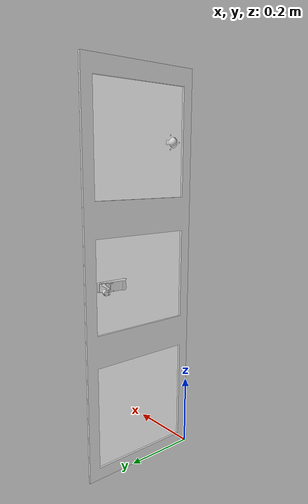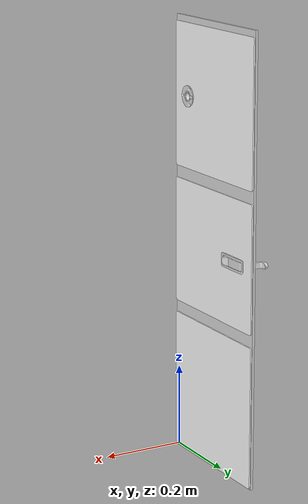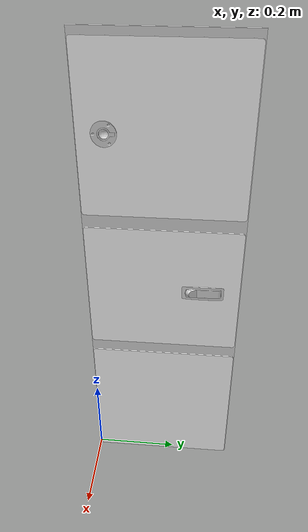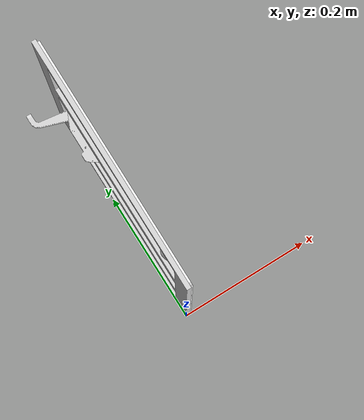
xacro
<?xml version="1.0"?>
<robot xmlns:xacro="http://wiki.ros.org/xacro" name="trainer_front_right_face">
  <xacro:arg name="prefix" default=""/>

  <xacro:include filename="$(find trainer)/urdf/colors.xacro"/>

  <link name="world"/>

  <xacro:include filename="$(find trainer)/urdf/trainer_front_right_face.xacro"/>
  <xacro:trainer_front_right_face prefix="$(arg prefix)" parent="world">
    <origin xyz="0.0 0.0 0.0" rpy="0 0 0"/>
  </xacro:trainer_front_right_face>

</robot>

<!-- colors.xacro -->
<robot xmlns:xacro="http://wiki.ros.org/xacro" name="trainer_side">

  <material name="red">
    <color rgba="1.0 0 0 1"/>
  </material>

  <material name="green">
    <color rgba="0 1.0 0 1"/>
  </material>

  <material name="blue">
    <color rgba="0 0 1.0 1"/>
  </material>

  <material name="gray">
    <color rgba="0.85 0.85 0.85 1.0"/>
  </material>

  <material name="white">
    <color rgba="1.0 1.0 1.0 1.0"/>
  </material>

</robot>

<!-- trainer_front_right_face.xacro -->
<robot xmlns:xacro="http://wiki.ros.org/xacro">

  <xacro:macro name="trainer_front_right_face" params="
    prefix:=''
    parent:=''
    *origin">

  <joint name="${prefix}trainer_front_right_face_joint" type="fixed">
    <parent link="${parent}"/>
    <child link="${prefix}front_right_face"/>
    <xacro:insert_block name="origin"/>
  </joint>

  <link name="${prefix}front_right_face">
    <!--TODO set proper inertia-->
    <inertial>
      <origin rpy="0 0 0" xyz="0.0 0.0 0.0"/>
      <mass value="0.1"/>
      <inertia ixx="0.1" ixy="0.0" ixz="0.0" iyy="0.1" iyz="0.0" izz="0.1"/>
    </inertial>
    <visual>
      <origin xyz="0.0 0.0 0.0" rpy="0 0 0"/>
      <geometry>
        <mesh filename="package://trainer/meshes/visual/front_right_face.stl"/>
      </geometry>
      <material name="gray"/>
    </visual>
    <collision>
      <origin xyz="0.0 0.0 0.0" rpy="0 0 0"/>
      <geometry>
        <mesh filename="package://trainer/meshes/collision/front_right_face.stl"/>
      </geometry>
      <material name="red"/>
    </collision>
  </link>

  <joint name="${prefix}cabinet_1_joint" type="revolute">
    <axis xyz="0 0 1"/>
    <limit effort="10.0" lower="0.0" upper="3.14" velocity="0.5"/>
    <parent link="${prefix}front_right_face"/>
    <child link="${prefix}cabinet_1"/>
    <origin xyz="0.017 ${0.344 + 0.0018} 0.713" rpy="0 0 0"/>
    <dynamics friction="3.0" damping="3.0"/>
  </joint>

  <link name="${prefix}cabinet_1">
    <!--TODO set proper inertia-->
    <inertial>
      <origin rpy="0 0 0" xyz="0.0 0.0 0.0"/>
      <mass value="0.1"/>
      <inertia ixx="0.1" ixy="0.0" ixz="0.0" iyy="0.1" iyz="0.0" izz="0.1"/>
    </inertial>
    <visual>
      <origin xyz="${-0.0075 - 0.003175} -0.00366 0.0" rpy="0 0 0"/>
      <geometry>
        <mesh filename="package://trainer/meshes/visual/cabinet_door_1.stl"/>
      </geometry>
      <material name="white"/>
    </visual>
    <collision>
      <origin xyz="${-0.0075 - 0.003175} -0.00366 0.0" rpy="0 0 0"/>
      <geometry>
        <mesh filename="package://trainer/meshes/collision/cabinet_door_1.stl"/>
      </geometry>
      <material name="red"/>
    </collision>
  </link>

  <joint name="${prefix}round_latch_housing_joint" type="fixed">
    <parent link="${prefix}cabinet_1"/>
    <child link="${prefix}round_latch_housing"/>
    <origin xyz="-0.00547 -0.28855 0.16622" rpy="${pi} 0 0"/>
  </joint>

  <link name="${prefix}round_latch_housing">
    <!--TODO set proper inertia-->
    <inertial>
      <origin rpy="0 0 0" xyz="0.0 0.0 0.0"/>
      <mass value="0.1"/>
      <inertia ixx="0.1" ixy="0.0" ixz="0.0" iyy="0.1" iyz="0.0" izz="0.1"/>
    </inertial>
    <visual>
      <origin xyz="0.0 0.0 0.0" rpy="0 0 0"/>
      <geometry>
        <mesh filename="package://trainer/meshes/visual/round_latch_housing.stl"/>
      </geometry>
      <material name="gray"/>
    </visual>
    <collision>
      <origin xyz="0.0 0.0 0.0" rpy="0 0 0"/>
      <geometry>
        <mesh filename="package://trainer/meshes/collision/round_latch_housing.stl"/>
      </geometry>
      <material name="red"/>
    </collision>
  </link>

  <joint name="${prefix}round_latch_joint" type="revolute">
    <axis xyz="0 0 -1"/>
    <limit effort="10.0" lower="0.0" upper="3.14" velocity="0.5"/>
    <parent link="${prefix}round_latch_housing"/>
    <child link="${prefix}round_latch_handle"/>
    <origin xyz="0.0 -0.0212 -0.0035" rpy="0 0 0"/>
    <dynamics friction="3.0" damping="3.0"/>
  </joint>

  <link name="${prefix}round_latch_handle">
    <!--TODO set proper inertia-->
    <inertial>
      <origin rpy="0 0 0" xyz="0.0 0.0 0.0"/>
      <mass value="0.1"/>
      <inertia ixx="0.1" ixy="0.0" ixz="0.0" iyy="0.1" iyz="0.0" izz="0.1"/>
    </inertial>
    <visual>
      <origin xyz="0.0 0.0 0.0" rpy="0 0 0"/>
      <geometry>
        <mesh filename="package://trainer/meshes/visual/round_latch_handle.stl"/>
      </geometry>
      <material name="gray"/>
    </visual>
    <collision>
      <origin xyz="0.0 0.0 0.0" rpy="0 0 0"/>
      <geometry>
        <mesh filename="package://trainer/meshes/collision/round_latch_handle.stl"/>
      </geometry>
      <material name="red"/>
    </collision>
  </link>

  <joint name="${prefix}cabinet_2_joint" type="revolute">
    <axis xyz="0 0 -1"/>
    <limit effort="10.0" lower="0.0" upper="3.14" velocity="0.5"/>
    <parent link="${prefix}front_right_face"/>
    <child link="${prefix}cabinet_2"/>
    <origin xyz="0.017 -0.0018 0.379" rpy="0 0 0"/>
    <dynamics friction="3.0" damping="3.0"/>
  </joint>

  <link name="${prefix}cabinet_2">
    <!--TODO set proper inertia-->
    <inertial>
      <origin rpy="0 0 0" xyz="0.0 0.0 0.0"/>
      <mass value="0.1"/>
      <inertia ixx="0.1" ixy="0.0" ixz="0.0" iyy="0.1" iyz="0.0" izz="0.1"/>
    </inertial>
    <visual>
      <origin xyz="${-0.0075 - 0.003175} 0.00366 0.0" rpy="0 0 0"/>
      <geometry>
        <mesh filename="package://trainer/meshes/visual/cabinet_door_2.stl"/>
      </geometry>
      <material name="white"/>
    </visual>
    <collision>
      <origin xyz="${-0.0075 - 0.003175} 0.00366 0.0" rpy="0 0 0"/>
      <geometry>
        <mesh filename="package://trainer/meshes/collision/cabinet_door_2.stl"/>
      </geometry>
      <material name="red"/>
    </collision>
  </link>

  <joint name="${prefix}push_latch_housing_joint" type="fixed">
    <parent link="${prefix}cabinet_2"/>
    <child link="${prefix}push_latch_housing"/>
    <origin xyz="-0.0075 0.2185 0.134" rpy="0 0 0"/>
  </joint>

  <link name="${prefix}push_latch_housing">
    <!--TODO set proper inertia-->
    <inertial>
      <origin rpy="0 0 0" xyz="0.0 0.0 0.0"/>
      <mass value="0.1"/>
      <inertia ixx="0.1" ixy="0.0" ixz="0.0" iyy="0.1" iyz="0.0" izz="0.1"/>
    </inertial>
    <visual>
      <origin xyz="0.0 0.0 0.0" rpy="0 0 0"/>
      <geometry>
        <mesh filename="package://trainer/meshes/visual/push_latch_housing.stl"/>
      </geometry>
      <material name="gray"/>
    </visual>
    <collision>
      <origin xyz="0.0 0.0 0.0" rpy="0 0 0"/>
      <geometry>
        <mesh filename="package://trainer/meshes/collision/push_latch_housing.stl"/>
      </geometry>
      <material name="red"/>
    </collision>
  </link>

  <joint name="${prefix}push_latch_button_joint" type="prismatic">
    <axis xyz="-1 0 0"/>
    <!--TODO button travel is a complete guess at this point-->
    <limit effort="10.0" lower="0.0" upper="0.005" velocity="0.5"/>
    <parent link="${prefix}push_latch_housing"/>
    <child link="${prefix}push_latch_button"/>
    <origin xyz="-0.0125 0.0285 0.0045" rpy="0 0 ${pi/8}"/>
    <dynamics friction="3.0" damping="3.0"/>
  </joint>

  <link name="${prefix}push_latch_button">
    <!--TODO set proper inertia-->
    <inertial>
      <origin rpy="0 0 0" xyz="0.0 0.0 0.0"/>
      <mass value="0.1"/>
      <inertia ixx="0.1" ixy="0.0" ixz="0.0" iyy="0.1" iyz="0.0" izz="0.1"/>
    </inertial>
    <visual>
      <origin xyz="0.0 0.0 0.0" rpy="0 0 0"/>
      <geometry>
        <mesh filename="package://trainer/meshes/visual/push_latch_button.stl"/>
      </geometry>
      <material name="gray"/>
    </visual>
    <collision>
      <origin xyz="0.0 0.0 0.0" rpy="0 0 0"/>
      <geometry>
        <mesh filename="package://trainer/meshes/collision/push_latch_button.stl"/>
      </geometry>
      <material name="red"/>
    </collision>
  </link>

  <joint name="${prefix}push_latch_handle_joint" type="revolute">
    <axis xyz="0 0 1"/>
    <limit effort="10.0" lower="0.0" upper="${pi/3}" velocity="0.5"/>
    <parent link="${prefix}push_latch_housing"/>
    <child link="${prefix}push_latch_handle"/>
    <origin xyz="-0.003 0.079 0.0045" rpy="0 0 0"/>
    <dynamics friction="3.0" damping="3.0"/>
  </joint>

  <link name="${prefix}push_latch_handle">
    <!--TODO set proper inertia-->
    <inertial>
      <origin rpy="0 0 0" xyz="0.0 0.0 0.0"/>
      <mass value="0.1"/>
      <inertia ixx="0.1" ixy="0.0" ixz="0.0" iyy="0.1" iyz="0.0" izz="0.1"/>
    </inertial>
    <visual>
      <origin xyz="0.0 0.0 0.0" rpy="0 0 0"/>
      <geometry>
        <mesh filename="package://trainer/meshes/visual/push_latch_handle.stl"/>
      </geometry>
      <material name="gray"/>
    </visual>
    <collision>
      <origin xyz="0.0 0.0 0.0" rpy="0 0 0"/>
      <geometry>
        <mesh filename="package://trainer/meshes/collision/push_latch_handle.stl"/>
      </geometry>
      <material name="red"/>
    </collision>
  </link>

  <joint name="${prefix}cabinet_3_joint" type="revolute">
    <axis xyz="0 0 1"/>
    <limit effort="10.0" lower="0.0" upper="${pi}" velocity="0.5"/>
    <parent link="${prefix}front_right_face"/>
    <child link="${prefix}cabinet_3"/>
    <origin xyz="0.017 ${0.344 + 0.0018} 0.007" rpy="0 0 0"/>
    <dynamics friction="3.0" damping="3.0"/>
  </joint>

  <link name="${prefix}cabinet_3">
    <!--TODO set proper inertia-->
    <inertial>
      <origin rpy="0 0 0" xyz="0.0 0.0 0.0"/>
      <mass value="0.1"/>
      <inertia ixx="0.1" ixy="0.0" ixz="0.0" iyy="0.1" iyz="0.0" izz="0.1"/>
    </inertial>
    <visual>
      <origin xyz="${-0.0075 - 0.003175} -0.00366 0.0" rpy="0 0 0"/>
      <geometry>
        <mesh filename="package://trainer/meshes/visual/cabinet_door_3.stl"/>
      </geometry>
      <material name="white"/>
    </visual>
    <collision>
      <origin xyz="${-0.0075 - 0.003175} -0.00366 0.0" rpy="0 0 0"/>
      <geometry>
        <mesh filename="package://trainer/meshes/collision/cabinet_door_3.stl"/>
      </geometry>
      <material name="red"/>
    </collision>
  </link>

  </xacro:macro>
</robot>
